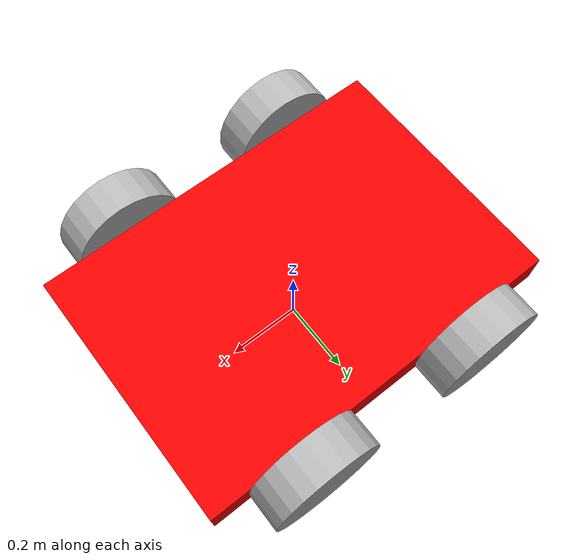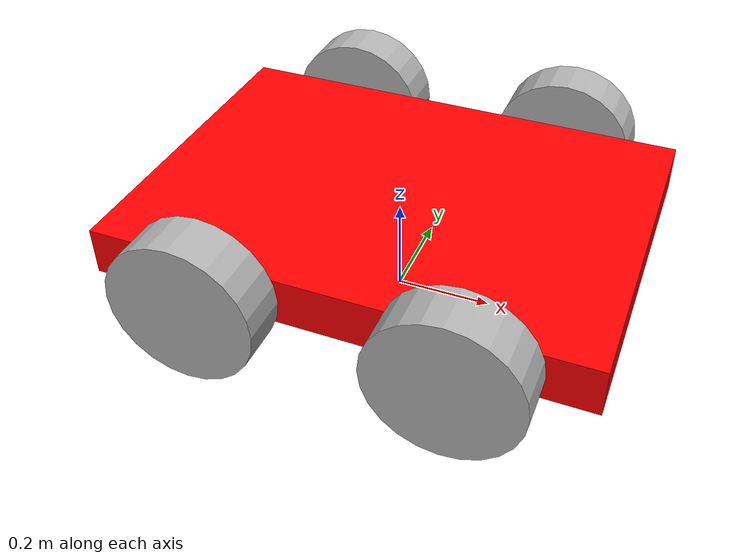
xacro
<?xml version="1.0"?>
<robot xmlns:xacro="http://www.ros.org/wiki/xacro" name="rover">
    <link name="base_link">
        <visual>
            <geometry>
                <box size="1.0 0.7 0.1" />
            </geometry>
            <material name="red">
                <color rgba="1 0 0 1"/>
            </material>
        </visual>
        <collision>
            <geometry>
                <box size="1.0 1.0 1.0" />
            </geometry>
        </collision>
        <inertial>
            <mass value="0.0"/>
            <origin xyz="0.0 0.0 0.0" rpy="0.0 0.0 0.0"/>
            <inertia ixx="0.0" ixy="0.0" ixz="0.0" iyy="0.0" iyz="0.0" izz="0.0"/>
        </inertial>
    </link>
    <link name="base_footprint">
    </link>
    <joint name="base_joint" type="fixed">
        <parent link="base_footprint"/>
        <child link="base_link"/>
        <origin xyz="0 0 0.2" rpy="0 0 0"/>
        <axis xyz="0 0 0.2"/>
    </joint>

    <xacro:property name="pi" value="3.14"/>

    <xacro:macro name="wheel" params="name x y">
        <link name="wheel_${name}_link">
            <visual>
                <geometry>
                    <cylinder radius="0.15" length="0.1"/>
                </geometry>
                <material name="LightGrey">
                    <color rgba="0.7 0.7 0.7 1.0"/>
                </material>
            </visual>
            <collision>
                <geometry>
                    <cylinder radius="1.0" length="1.0"/>
                </geometry>
            </collision>
            <inertial>
                <mass value="0.0"/>
                <origin xyz="0.0 0.0 0.0" rpy="0.0 0.0 0.0"/>
                <inertia ixx="0.0" ixy="0.0" ixz="0.0" iyy="0.0" iyz="0.0" izz="0.0"/>
            </inertial>
        </link>

        <joint name="wheel_${name}_joint" type="continuous">
            <parent link="base_link"/>
            <child link="wheel_${name}_link"/>
            <origin xyz="${x} ${y} 0.0" rpy="${pi/2} 0 0"/>
            <axis xyz="0 0 1.0"/>
            <limit lower="0.0" upper="0.0" effort="0.1" velocity="0.1"/>
        </joint>

    </xacro:macro>

    <xacro:wheel name="front_right" x="-0.25" y="0.4"/>
    <xacro:wheel name="front_left" x="-0.25" y="-0.4"/>
    <xacro:wheel name="rear_right" x="0.25" y="0.4"/>
    <xacro:wheel name="rear_left" x="0.25" y="-0.4"/>

</robot>
